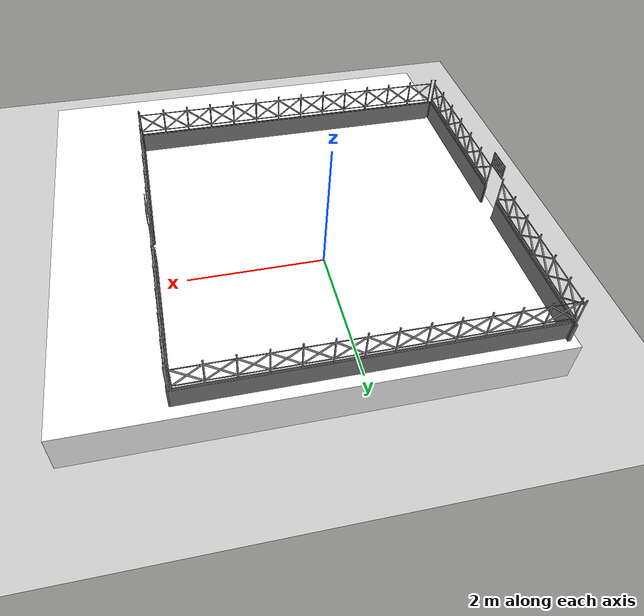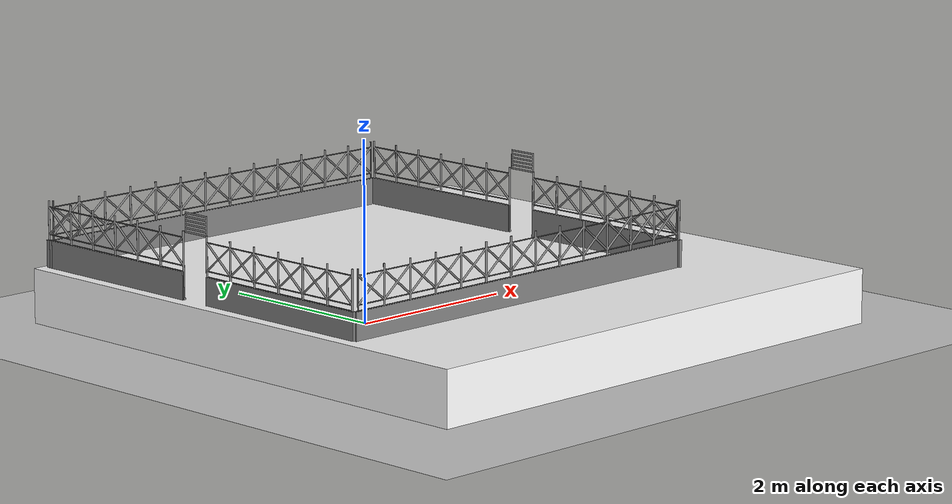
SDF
<sdf version="1.7">
 <world name="default">
  <light name="sun" type="directional">
   <pose>0 0 10 0 -0 0</pose>
   <diffuse>0.8 0.8 0.8 1</diffuse>
   <specular>0.2 0.2 0.2 1</specular>
   <attenuation>
    <range>1000</range>
    <constant>0.9</constant>
    <linear>0.01</linear>
    <quadratic>0.001</quadratic>
   </attenuation>
   <direction>-0.5 0.1 -0.9</direction>
   <spot><inner_angle>0</inner_angle><outer_angle>0</outer_angle><falloff>0</falloff></spot>
  </light>
  <model name="ground_plane">
   <static>1</static>
   <link name="link">
    <collision name="collision">
     <geometry><plane><normal>0 0 1</normal><size>100 100</size></plane></geometry>
     <surface><friction><ode><mu>100</mu><mu2>50</mu2></ode></friction></surface>
    </collision>
    <visual name="visual">
     <cast_shadows>0</cast_shadows>
     <geometry><plane><normal>0 0 1</normal><size>100 100</size></plane></geometry>
     <material>
      <script><uri>file://media/materials/scripts/gazebo.material</uri><name>Gazebo/Grey</name></script>
     </material>
    </visual>
   </link>
  </model>
  <gravity>0 0 -9.8</gravity>
  <magnetic_field>6e-06 2.3e-05 -4.2e-05</magnetic_field>
  <atmosphere type="adiabatic"/>
  <physics type="ode">
   <max_step_size>0.001</max_step_size>
   <real_time_factor>1</real_time_factor>
   <real_time_update_rate>1000</real_time_update_rate>
  </physics>
  <scene><ambient>0.4 0.4 0.4 1</ambient><background>0.7 0.7 0.7 1</background><shadows>1</shadows></scene>
  <audio><device>default</device></audio>
  <spherical_coordinates>
   <surface_model>EARTH_WGS84</surface_model>
   <latitude_deg>0</latitude_deg>
   <longitude_deg>0</longitude_deg>
   <elevation>0</elevation>
   <heading_deg>0</heading_deg>
  </spherical_coordinates>
  <model name="arene">
   <static>1</static>
   <link name="base_link">
    <pose>-2.5 2.5 0 1.57 -0 0</pose>
    <visual name="base_visual">
     <geometry>
      <mesh><uri>model://arene/meshes/arene_base.STL</uri><scale>0.001 0.001 0.001</scale></mesh>
     </geometry>
     <material>
      <ambient>0.9 0.9 0.9 1</ambient>
      <diffuse>1 1 1 1</diffuse>
      <specular>0.5 0.5 0.5 1</specular>
     </material>
    </visual>
    <collision name="base_collision">
     <pose>2.5 0.3 2.5 1.57 -0 0</pose>
     <geometry><box><size>5 5 0.7</size></box></geometry>
    </collision>
    <inertial>
     <mass>100</mass>
     <inertia><ixx>0</ixx><ixy>0</ixy><ixz>0</ixz><iyy>0</iyy><iyz>0</iyz><izz>0</izz></inertia>
    </inertial>
   </link>
   <link name="frame_left_link">
    <pose>-2.4 2.355 0.6 1.57 -0 0</pose>
    <visual name="frame_left_visual">
     <geometry>
      <mesh><uri>model://arene/meshes/arene_frame.STL</uri><scale>0.001 0.001 0.001</scale></mesh>
     </geometry>
     <material>
      <ambient>0.5 0.5 0.5 1</ambient>
      <diffuse>0.5 0.5 0.5 1</diffuse>
      <specular>0.5 0.5 0.5 1</specular>
     </material>
    </visual>
    <collision name="frame_left_collision">
     <pose>2.4 0.3 0 1.57 -0 0</pose>
     <geometry><box><size>4.8 0.1 0.6</size></box></geometry>
    </collision>
    <inertial>
     <mass>25</mass>
     <inertia><ixx>0</ixx><ixy>0</ixy><ixz>0</ixz><iyy>0</iyy><iyz>0</iyz><izz>0</izz></inertia>
    </inertial>
   </link>
   <link name="frame_right_link">
    <pose>2.4 -2.355 0.6 1.57 0 3.14</pose>
    <visual name="frame_right_visual">
     <geometry>
      <mesh><uri>model://arene/meshes/arene_frame.STL</uri><scale>0.001 0.001 0.001</scale></mesh>
     </geometry>
     <material>
      <ambient>0.5 0.5 0.5 1</ambient>
      <diffuse>0.5 0.5 0.5 1</diffuse>
      <specular>0.5 0.5 0.5 1</specular>
     </material>
    </visual>
    <collision name="frame_right_collision">
     <pose>2.4 0.3 0 1.57 -0 0</pose>
     <geometry><box><size>4.8 0.1 0.6</size></box></geometry>
    </collision>
    <inertial>
     <mass>25</mass>
     <inertia><ixx>0</ixx><ixy>0</ixy><ixz>0</ixz><iyy>0</iyy><iyz>0</iyz><izz>0</izz></inertia>
    </inertial>
   </link>
   <link name="frame_front_link">
    <pose>-2.4 2.4 0.6 1.57 -0 0</pose>
    <visual name="frame_front_visual">
     <geometry>
      <mesh><uri>model://arene/meshes/arene_frame_with_door.STL</uri><scale>0.001 0.001 0.001</scale></mesh>
     </geometry>
     <material>
      <ambient>0.5 0.5 0.5 1</ambient>
      <diffuse>0.5 0.5 0.5 1</diffuse>
      <specular>0.5 0.5 0.5 1</specular>
     </material>
    </visual>
    <collision name="frame_front_collision">
     <pose>0 0.3 2.5 1.57 1.57 0</pose>
     <geometry><box><size>4.8 0.1 0.6</size></box></geometry>
    </collision>
    <inertial>
     <mass>25</mass>
     <inertia><ixx>0</ixx><ixy>0</ixy><ixz>0</ixz><iyy>0</iyy><iyz>0</iyz><izz>0</izz></inertia>
    </inertial>
   </link>
   <link name="frame_back_link">
    <pose>2.35 2.35 0.6 1.57 -0 0</pose>
    <visual name="frame_back_visual">
     <geometry>
      <mesh><uri>model://arene/meshes/arene_frame_with_door.STL</uri><scale>0.001 0.001 0.001</scale></mesh>
     </geometry>
     <material>
      <ambient>0.5 0.5 0.5 1</ambient>
      <diffuse>0.5 0.5 0.5 1</diffuse>
      <specular>0.5 0.5 0.5 1</specular>
     </material>
    </visual>
    <collision name="frame_back_collision">
     <pose>0 0.3 2.5 1.57 1.57 0</pose>
     <geometry><box><size>4.8 0.1 0.6</size></box></geometry>
    </collision>
    <inertial>
     <mass>25</mass>
     <inertia><ixx>0</ixx><ixy>0</ixy><ixz>0</ixz><iyy>0</iyy><iyz>0</iyz><izz>0</izz></inertia>
    </inertial>
   </link>
   <joint name="fixed_left_joint" type="fixed"><parent>base_link</parent><child>frame_left_link</child></joint>
   <joint name="fixed_right_joint" type="fixed"><parent>base_link</parent><child>frame_right_link</child></joint>
   <joint name="fixed_front_joint" type="fixed"><parent>base_link</parent><child>frame_front_link</child></joint>
   <joint name="fixed_back_joint" type="fixed"><parent>base_link</parent><child>frame_back_link</child></joint>
   <pose>0.007778 0.001603 0 0 -0 0</pose>
  </model>
 </world>
</sdf>
